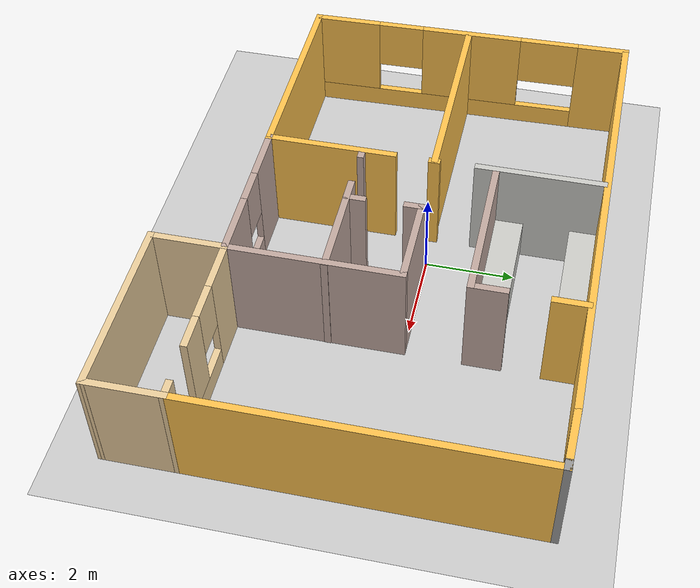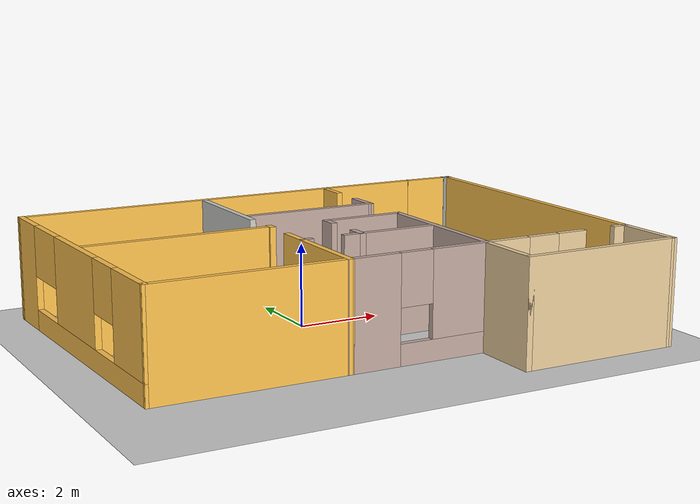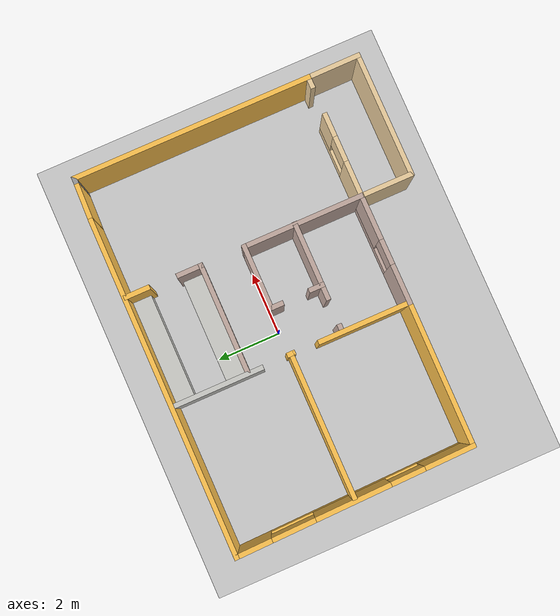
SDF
<sdf version="1.7">
 <world name="default">
  <scene><ambient>0.4 0.4 0.4 1</ambient><background>0.7 0.7 0.7 1</background><shadows>1</shadows></scene>
  <light name="sun" type="directional">
   <pose>0 0 10 0 -0 0</pose>
   <diffuse>0.8 0.8 0.8 1</diffuse>
   <specular>0.2 0.2 0.2 1</specular>
   <attenuation>
    <range>1000</range>
    <constant>0.9</constant>
    <linear>0.01</linear>
    <quadratic>0.001</quadratic>
   </attenuation>
   <direction>-0.5 0.1 -0.9</direction>
   <spot><inner_angle>0</inner_angle><outer_angle>0</outer_angle><falloff>0</falloff></spot>
  </light>
  <model name="ground_plane">
   <static>1</static>
   <link name="link">
    <collision name="collision">
     <geometry><plane><normal>0 0 1</normal><size>100 100</size></plane></geometry>
     <surface>
      <contact><collide_bitmask>65535</collide_bitmask></contact>
      <friction><ode><mu>100</mu><mu2>50</mu2></ode></friction>
     </surface>
    </collision>
    <visual name="visual">
     <cast_shadows>0</cast_shadows>
     <geometry><plane><normal>0 0 1</normal><size>100 100</size></plane></geometry>
     <material>
      <script><uri>file://media/materials/scripts/gazebo.material</uri><name>Gazebo/Grey</name></script>
     </material>
    </visual>
   </link>
  </model>
  <physics type="ode">
   <real_time_update_rate>1000</real_time_update_rate>
   <max_step_size>0.001</max_step_size>
   <real_time_factor>1</real_time_factor>
   <ode>
    <solver>
     <type>quick</type>
     <iters>150</iters>
     <precon_iters>0</precon_iters>
     <sor>1.4</sor>
     <use_dynamic_moi_rescaling>1</use_dynamic_moi_rescaling>
    </solver>
    <constraints>
     <cfm>1e-05</cfm>
     <erp>0.2</erp>
     <contact_max_correcting_vel>2000</contact_max_correcting_vel>
     <contact_surface_layer>0.01</contact_surface_layer>
    </constraints>
   </ode>
  </physics>
  <gravity>0 0 -9.8</gravity>
  <magnetic_field>6e-06 2.3e-05 -4.2e-05</magnetic_field>
  <atmosphere type="adiabatic"/>
  <spherical_coordinates>
   <surface_model>EARTH_WGS84</surface_model>
   <latitude_deg>0</latitude_deg>
   <longitude_deg>0</longitude_deg>
   <elevation>0</elevation>
   <heading_deg>0</heading_deg>
  </spherical_coordinates>
  <model name="a3">
   <pose>0.471916 -0.801169 0 0 -0 0</pose>
   <link name="Stairs_11">
    <visual name="Stairs_11_Visual_0">
     <pose>0.400029 4.18994 0.5 0 0 -1.5708</pose>
     <geometry><box><size>0.603 3.419 1</size></box></geometry>
     <material>
      <script><uri>file://media/materials/scripts/gazebo.material</uri><name>Gazebo/CeilingTiled</name></script>
      <ambient>1 1 1 1</ambient>
     </material>
     <meta><layer>0</layer></meta>
    </visual>
    <collision name="Stairs_11_Collision_0">
     <geometry><box><size>0.603 3.419 1</size></box></geometry>
     <pose>0.400029 4.18994 0.5 0 0 -1.5708</pose>
    </collision>
   </link>
   <link name="Stairs_9">
    <visual name="Stairs_9_Visual_0">
     <pose>0.469784 2.50552 0.5 0 0 -1.5708</pose>
     <geometry><box><size>0.687167 3.42537 1</size></box></geometry>
     <material>
      <script><uri>file://media/materials/scripts/gazebo.material</uri><name>Gazebo/CeilingTiled</name></script>
      <ambient>1 1 1 1</ambient>
     </material>
     <meta><layer>0</layer></meta>
    </visual>
    <collision name="Stairs_9_Collision_0">
     <geometry><box><size>0.687167 3.42537 1</size></box></geometry>
     <pose>0.469784 2.50552 0.5 0 0 -1.5708</pose>
    </collision>
   </link>
   <link name="Wall_101">
    <collision name="Wall_101_Collision">
     <geometry><box><size>2.9783 0.15 2.5</size></box></geometry>
     <pose>0 0 1.25 0 -0 0</pose>
    </collision>
    <visual name="Wall_101_Visual">
     <pose>0 0 1.25 0 -0 0</pose>
     <geometry><box><size>2.9783 0.15 2.5</size></box></geometry>
     <material>
      <script><uri>file://media/materials/scripts/gazebo.material</uri><name>Gazebo/Grey</name></script>
      <ambient>1 0.764706 0.305882 1</ambient>
     </material>
     <meta><layer>0</layer></meta>
    </visual>
    <pose>-1.2918 -1.56 0 0 -0 -1.5708</pose>
   </link>
   <link name="Wall_103">
    <collision name="Wall_103_Collision">
     <geometry><box><size>0.318057 0.15 2.5</size></box></geometry>
     <pose>0 0 1.25 0 -0 0</pose>
    </collision>
    <visual name="Wall_103_Visual">
     <pose>0 0 1.25 0 -0 0</pose>
     <geometry><box><size>0.318057 0.15 2.5</size></box></geometry>
     <material>
      <script><uri>file://media/materials/scripts/gazebo.material</uri><name>Gazebo/Grey</name></script>
      <ambient>0.760784 0.662745 0.627451 1</ambient>
     </material>
     <meta><layer>0</layer></meta>
    </visual>
    <pose>-1.19661 -0.839242 0 0 -0 0</pose>
   </link>
   <link name="Wall_105">
    <collision name="Wall_105_Collision">
     <geometry><box><size>0.462711 0.15 2.5</size></box></geometry>
     <pose>0 0 1.25 0 -0 0</pose>
    </collision>
    <visual name="Wall_105_Visual">
     <pose>0 0 1.25 0 -0 0</pose>
     <geometry><box><size>0.462711 0.15 2.5</size></box></geometry>
     <material>
      <script><uri>file://media/materials/scripts/gazebo.material</uri><name>Gazebo/Grey</name></script>
      <ambient>0.760784 0.662745 0.627451 1</ambient>
     </material>
     <meta><layer>0</layer></meta>
    </visual>
    <pose>0.173202 0.614505 0 0 -0 1.5708</pose>
   </link>
   <link name="Wall_106">
    <collision name="Wall_106_Collision">
     <geometry><box><size>2.10596 0.15 2.5</size></box></geometry>
     <pose>0 0 1.25 0 -0 0</pose>
    </collision>
    <visual name="Wall_106_Visual">
     <pose>0 0 1.25 0 -0 0</pose>
     <geometry><box><size>2.10596 0.15 2.5</size></box></geometry>
     <material>
      <script><uri>file://media/materials/scripts/gazebo.material</uri><name>Gazebo/Grey</name></script>
      <ambient>0.760784 0.662745 0.627451 1</ambient>
     </material>
     <meta><layer>0</layer></meta>
    </visual>
    <pose>1.1512 0.771005 0 0 -0 0</pose>
   </link>
   <link name="Wall_107">
    <collision name="Wall_107_Collision">
     <geometry><box><size>3.88427 0.15 2.5</size></box></geometry>
     <pose>0 0 1.25 0 -0 0</pose>
    </collision>
    <visual name="Wall_107_Visual">
     <pose>0 0 1.25 0 -0 0</pose>
     <geometry><box><size>3.88427 0.15 2.5</size></box></geometry>
     <material>
      <script><uri>file://media/materials/scripts/gazebo.material</uri><name>Gazebo/Grey</name></script>
      <ambient>0.760784 0.662745 0.627451 1</ambient>
     </material>
     <meta><layer>0</layer></meta>
    </visual>
    <pose>2.1292 -1.096 0 0 -0 -1.5708</pose>
   </link>
   <link name="Wall_109">
    <collision name="Wall_109_Collision">
     <geometry><box><size>2.5 0.15 2.5</size></box></geometry>
     <pose>0 0 1.25 0 -0 0</pose>
    </collision>
    <visual name="Wall_109_Visual">
     <pose>0 0 1.25 0 -0 0</pose>
     <geometry><box><size>2.5 0.15 2.5</size></box></geometry>
     <material>
      <script><uri>file://media/materials/scripts/gazebo.material</uri><name>Gazebo/Grey</name></script>
      <ambient>0.760784 0.662745 0.627451 1</ambient>
     </material>
     <meta><layer>0</layer></meta>
    </visual>
    <pose>0.96531 -0.850421 0 0 -0 3.14159</pose>
   </link>
   <link name="Wall_111">
    <collision name="Wall_111_Collision">
     <geometry><box><size>0.5 0.15 2.5</size></box></geometry>
     <pose>0 0 1.25 0 -0 0</pose>
    </collision>
    <visual name="Wall_111_Visual">
     <pose>0 0 1.25 0 -0 0</pose>
     <geometry><box><size>0.5 0.15 2.5</size></box></geometry>
     <material>
      <script><uri>file://media/materials/scripts/gazebo.material</uri><name>Gazebo/Grey</name></script>
      <ambient>0.760784 0.662745 0.627451 1</ambient>
     </material>
     <meta><layer>0</layer></meta>
    </visual>
    <pose>0.19517 -0.678873 0 0 -0 -1.5708</pose>
   </link>
   <link name="Wall_114">
    <collision name="Wall_114_Collision">
     <geometry><box><size>1.75 0.15 2.5</size></box></geometry>
     <pose>0 0 1.25 0 -0 0</pose>
    </collision>
    <visual name="Wall_114_Visual">
     <pose>0 0 1.25 0 -0 0</pose>
     <geometry><box><size>1.75 0.15 2.5</size></box></geometry>
     <material>
      <script><uri>file://media/materials/scripts/gazebo.material</uri><name>Gazebo/Grey</name></script>
      <ambient>0.921569 0.807843 0.615686 1</ambient>
     </material>
     <meta><layer>0</layer></meta>
    </visual>
    <pose>2.1292 -3.763 0 0 -0 -1.5708</pose>
   </link>
   <link name="Wall_115">
    <collision name="Wall_115_Collision">
     <geometry><box><size>4 0.15 2.5</size></box></geometry>
     <pose>0 0 1.25 0 -0 0</pose>
    </collision>
    <visual name="Wall_115_Visual">
     <pose>0 0 1.25 0 -0 0</pose>
     <geometry><box><size>4 0.15 2.5</size></box></geometry>
     <material>
      <script><uri>file://media/materials/scripts/gazebo.material</uri><name>Gazebo/Grey</name></script>
      <ambient>0.921569 0.807843 0.615686 1</ambient>
     </material>
     <meta><layer>0</layer></meta>
    </visual>
    <pose>4.0542 -4.563 0 0 -0 0</pose>
   </link>
   <link name="Wall_116">
    <collision name="Wall_116_Collision">
     <geometry><box><size>1.75502 0.15 2.5</size></box></geometry>
     <pose>0 0 1.25 0 -0 0</pose>
    </collision>
    <visual name="Wall_116_Visual">
     <pose>0 0 1.25 0 -0 0</pose>
     <geometry><box><size>1.75502 0.15 2.5</size></box></geometry>
     <material>
      <script><uri>file://media/materials/scripts/gazebo.material</uri><name>Gazebo/Grey</name></script>
      <ambient>0.921569 0.807843 0.615686 1</ambient>
     </material>
     <meta><layer>0</layer></meta>
    </visual>
    <pose>5.9752 -3.7605 0 0 -0 1.57578</pose>
   </link>
   <link name="Wall_118">
    <collision name="Wall_118_Collision">
     <geometry><box><size>4.66903 0.15 2.5</size></box></geometry>
     <pose>0 0 1.25 0 -0 0</pose>
    </collision>
    <visual name="Wall_118_Visual">
     <pose>0 0 1.25 0 -0 0</pose>
     <geometry><box><size>4.66903 0.15 2.5</size></box></geometry>
     <material>
      <script><uri>file://media/materials/scripts/gazebo.material</uri><name>Gazebo/Grey</name></script>
      <ambient>1 0.764706 0.305882 1</ambient>
     </material>
     <meta><layer>0</layer></meta>
    </visual>
    <pose>-3.5513 -2.966 0 0 -0 -0.003541</pose>
   </link>
   <link name="Wall_119">
    <pose>0.418702 -2.96849 0 0 -0 0.003215</pose>
    <visual name="Wall_119_Visual_0">
     <pose>-1.14237 0 1.25 0 -0 0</pose>
     <geometry><box><size>1.28627 0.15 2.5</size></box></geometry>
     <material>
      <script><uri>file://media/materials/scripts/gazebo.material</uri><name>Gazebo/Grey</name></script>
      <ambient>0.760784 0.662745 0.627451 1</ambient>
     </material>
     <meta><layer>0</layer></meta>
    </visual>
    <collision name="Wall_119_Collision_0">
     <geometry><box><size>1.28627 0.15 2.5</size></box></geometry>
     <pose>-1.14237 0 1.25 0 -0 0</pose>
    </collision>
    <visual name="Wall_119_Visual_1">
     <pose>0.643133 0 0.25 0 -0 0</pose>
     <geometry><box><size>2.28475 0.15 0.5</size></box></geometry>
     <material>
      <script><uri>file://media/materials/scripts/gazebo.material</uri><name>Gazebo/Grey</name></script>
      <ambient>0.760784 0.662745 0.627451 1</ambient>
     </material>
     <meta><layer>0</layer></meta>
    </visual>
    <collision name="Wall_119_Collision_1">
     <geometry><box><size>2.28475 0.15 0.5</size></box></geometry>
     <pose>0.643133 0 0.25 0 -0 0</pose>
    </collision>
    <visual name="Wall_119_Visual_2">
     <pose>1.04313 0 1.5 0 -0 0</pose>
     <geometry><box><size>1.48475 0.15 2</size></box></geometry>
     <material>
      <script><uri>file://media/materials/scripts/gazebo.material</uri><name>Gazebo/Grey</name></script>
      <ambient>0.760784 0.662745 0.627451 1</ambient>
     </material>
     <meta><layer>0</layer></meta>
    </visual>
    <collision name="Wall_119_Collision_2">
     <geometry><box><size>1.48475 0.15 2</size></box></geometry>
     <pose>1.04313 0 1.5 0 -0 0</pose>
    </collision>
    <visual name="Wall_119_Visual_3">
     <pose>-0.099242 0 1.9 0 -0 0</pose>
     <geometry><box><size>0.8 0.15 1.2</size></box></geometry>
     <material>
      <script><uri>file://media/materials/scripts/gazebo.material</uri><name>Gazebo/Grey</name></script>
      <ambient>0.760784 0.662745 0.627451 1</ambient>
     </material>
     <meta><layer>0</layer></meta>
    </visual>
    <collision name="Wall_119_Collision_3">
     <geometry><box><size>0.8 0.15 1.2</size></box></geometry>
     <pose>-0.099242 0 1.9 0 -0 0</pose>
    </collision>
   </link>
   <link name="Wall_120">
    <pose>3.4292 -2.963 0 0 -0 0</pose>
    <visual name="Wall_120_Visual_0">
     <pose>-0.781841 0 1.25 0 -0 0</pose>
     <geometry><box><size>1.18632 0.15 2.5</size></box></geometry>
     <material>
      <script><uri>file://media/materials/scripts/gazebo.material</uri><name>Gazebo/Grey</name></script>
      <ambient>0.921569 0.807843 0.615686 1</ambient>
     </material>
     <meta><layer>0</layer></meta>
    </visual>
    <collision name="Wall_120_Collision_0">
     <geometry><box><size>1.18632 0.15 2.5</size></box></geometry>
     <pose>-0.781841 0 1.25 0 -0 0</pose>
    </collision>
    <visual name="Wall_120_Visual_1">
     <pose>0.593159 0 0.25 0 -0 0</pose>
     <geometry><box><size>1.56368 0.15 0.5</size></box></geometry>
     <material>
      <script><uri>file://media/materials/scripts/gazebo.material</uri><name>Gazebo/Grey</name></script>
      <ambient>0.921569 0.807843 0.615686 1</ambient>
     </material>
     <meta><layer>0</layer></meta>
    </visual>
    <collision name="Wall_120_Collision_1">
     <geometry><box><size>1.56368 0.15 0.5</size></box></geometry>
     <pose>0.593159 0 0.25 0 -0 0</pose>
    </collision>
    <visual name="Wall_120_Visual_2">
     <pose>0.993159 0 1.5 0 -0 0</pose>
     <geometry><box><size>0.763682 0.15 2</size></box></geometry>
     <material>
      <script><uri>file://media/materials/scripts/gazebo.material</uri><name>Gazebo/Grey</name></script>
      <ambient>0.921569 0.807843 0.615686 1</ambient>
     </material>
     <meta><layer>0</layer></meta>
    </visual>
    <collision name="Wall_120_Collision_2">
     <geometry><box><size>0.763682 0.15 2</size></box></geometry>
     <pose>0.993159 0 1.5 0 -0 0</pose>
    </collision>
    <visual name="Wall_120_Visual_3">
     <pose>0.211318 0 1.9 0 -0 0</pose>
     <geometry><box><size>0.8 0.15 1.2</size></box></geometry>
     <material>
      <script><uri>file://media/materials/scripts/gazebo.material</uri><name>Gazebo/Grey</name></script>
      <ambient>0.921569 0.807843 0.615686 1</ambient>
     </material>
     <meta><layer>0</layer></meta>
    </visual>
    <collision name="Wall_120_Collision_3">
     <geometry><box><size>0.8 0.15 1.2</size></box></geometry>
     <pose>0.211318 0 1.9 0 -0 0</pose>
    </collision>
   </link>
   <link name="Wall_122">
    <collision name="Wall_122_Collision">
     <geometry><box><size>0.435228 0.15 2.5</size></box></geometry>
     <pose>0 0 1.25 0 -0 0</pose>
    </collision>
    <visual name="Wall_122_Visual">
     <pose>0 0 1.25 0 -0 0</pose>
     <geometry><box><size>0.435228 0.15 2.5</size></box></geometry>
     <material>
      <script><uri>file://media/materials/scripts/gazebo.material</uri><name>Gazebo/Grey</name></script>
      <ambient>0.921569 0.807843 0.615686 1</ambient>
     </material>
     <meta><layer>0</layer></meta>
    </visual>
    <pose>5.82874 -2.95892 0 0 -0 -3.13509</pose>
   </link>
   <link name="Wall_124">
    <collision name="Wall_124_Collision">
     <geometry><box><size>10.75 0.15 2.5</size></box></geometry>
     <pose>0 0 1.25 0 -0 0</pose>
    </collision>
    <visual name="Wall_124_Visual">
     <pose>0 0 1.25 0 -0 0</pose>
     <geometry><box><size>10.75 0.15 2.5</size></box></geometry>
     <material>
      <script><uri>file://media/materials/scripts/gazebo.material</uri><name>Gazebo/Grey</name></script>
      <ambient>1 0.764706 0.305882 1</ambient>
     </material>
     <meta><layer>0</layer></meta>
    </visual>
    <pose>-0.677924 4.56157 0 0 -0 0</pose>
   </link>
   <link name="Wall_126">
    <collision name="Wall_126_Collision">
     <geometry><box><size>0.25 0.15 2.5</size></box></geometry>
     <pose>0 0 1.25 0 -0 0</pose>
    </collision>
    <visual name="Wall_126_Visual">
     <pose>0 0 1.25 0 -0 0</pose>
     <geometry><box><size>0.25 0.15 2.5</size></box></geometry>
     <material>
      <script><uri>file://media/materials/scripts/gazebo.material</uri><name>Gazebo/Grey</name></script>
      <ambient>1 1 1 1</ambient>
     </material>
     <meta><layer>0</layer></meta>
    </visual>
    <pose>5.9212 4.52301 0 0 -0 3.14159</pose>
   </link>
   <link name="Wall_79">
    <pose>-5.89436 0.801788 0 0 -0 -1.54858</pose>
    <visual name="Wall_79_Visual_0">
     <pose>-3.23115 0 1.25 0 -0 0</pose>
     <geometry><box><size>1.20942 0.15 2.5</size></box></geometry>
     <material>
      <script><uri>file://media/materials/scripts/gazebo.material</uri><name>Gazebo/Grey</name></script>
      <ambient>1 0.764706 0.305882 1</ambient>
     </material>
     <meta><layer>0</layer></meta>
    </visual>
    <collision name="Wall_79_Collision_0">
     <geometry><box><size>1.20942 0.15 2.5</size></box></geometry>
     <pose>-3.23115 0 1.25 0 -0 0</pose>
    </collision>
    <visual name="Wall_79_Visual_1">
     <pose>0.604709 0 0.25 0 -0 0</pose>
     <geometry><box><size>6.4623 0.15 0.5</size></box></geometry>
     <material>
      <script><uri>file://media/materials/scripts/gazebo.material</uri><name>Gazebo/Grey</name></script>
      <ambient>1 0.764706 0.305882 1</ambient>
     </material>
     <meta><layer>0</layer></meta>
    </visual>
    <collision name="Wall_79_Collision_1">
     <geometry><box><size>6.4623 0.15 0.5</size></box></geometry>
     <pose>0.604709 0 0.25 0 -0 0</pose>
    </collision>
    <visual name="Wall_79_Visual_2">
     <pose>-0.047982 0 1.5 0 -0 0</pose>
     <geometry><box><size>2.39431 0.15 2</size></box></geometry>
     <material>
      <script><uri>file://media/materials/scripts/gazebo.material</uri><name>Gazebo/Grey</name></script>
      <ambient>1 0.764706 0.305882 1</ambient>
     </material>
     <meta><layer>0</layer></meta>
    </visual>
    <collision name="Wall_79_Collision_2">
     <geometry><box><size>2.39431 0.15 2</size></box></geometry>
     <pose>-0.047982 0 1.5 0 -0 0</pose>
    </collision>
    <visual name="Wall_79_Visual_3">
     <pose>3.03225 0 1.5 0 -0 0</pose>
     <geometry><box><size>1.60721 0.15 2</size></box></geometry>
     <material>
      <script><uri>file://media/materials/scripts/gazebo.material</uri><name>Gazebo/Grey</name></script>
      <ambient>1 0.764706 0.305882 1</ambient>
     </material>
     <meta><layer>0</layer></meta>
    </visual>
    <collision name="Wall_79_Collision_3">
     <geometry><box><size>1.60721 0.15 2</size></box></geometry>
     <pose>3.03225 0 1.5 0 -0 0</pose>
    </collision>
    <visual name="Wall_79_Visual_4">
     <pose>-1.93579 0 1.9 0 -0 0</pose>
     <geometry><box><size>1.38131 0.15 1.2</size></box></geometry>
     <material>
      <script><uri>file://media/materials/scripts/gazebo.material</uri><name>Gazebo/Grey</name></script>
      <ambient>1 0.764706 0.305882 1</ambient>
     </material>
     <meta><layer>0</layer></meta>
    </visual>
    <collision name="Wall_79_Collision_4">
     <geometry><box><size>1.38131 0.15 1.2</size></box></geometry>
     <pose>-1.93579 0 1.9 0 -0 0</pose>
    </collision>
    <visual name="Wall_79_Visual_5">
     <pose>1.68891 0 1.9 0 -0 0</pose>
     <geometry><box><size>1.07947 0.15 1.2</size></box></geometry>
     <material>
      <script><uri>file://media/materials/scripts/gazebo.material</uri><name>Gazebo/Grey</name></script>
      <ambient>1 0.764706 0.305882 1</ambient>
     </material>
     <meta><layer>0</layer></meta>
    </visual>
    <collision name="Wall_79_Collision_5">
     <geometry><box><size>1.07947 0.15 1.2</size></box></geometry>
     <pose>1.68891 0 1.9 0 -0 0</pose>
    </collision>
   </link>
   <link name="Wall_81">
    <collision name="Wall_81_Collision">
     <geometry><box><size>7.63125 0.15 2.5</size></box></geometry>
     <pose>0 0 1.25 0 -0 0</pose>
    </collision>
    <visual name="Wall_81_Visual">
     <pose>0 0 1.25 0 -0 0</pose>
     <geometry><box><size>7.63125 0.15 2.5</size></box></geometry>
     <material>
      <script><uri>file://media/materials/scripts/gazebo.material</uri><name>Gazebo/Grey</name></script>
      <ambient>1 0.764706 0.305882 1</ambient>
     </material>
     <meta><layer>0</layer></meta>
    </visual>
    <pose>5.9712 0.782505 0 0 -0 1.5708</pose>
   </link>
   <link name="Wall_85">
    <collision name="Wall_85_Collision">
     <geometry><box><size>4.62162 0.15 2.5</size></box></geometry>
     <pose>0 0 1.25 0 -0 0</pose>
    </collision>
    <visual name="Wall_85_Visual">
     <pose>0 0 1.25 0 -0 0</pose>
     <geometry><box><size>4.62162 0.15 2.5</size></box></geometry>
     <material>
      <script><uri>file://media/materials/scripts/gazebo.material</uri><name>Gazebo/Grey</name></script>
      <ambient>1 0.764706 0.305882 1</ambient>
     </material>
     <meta><layer>0</layer></meta>
    </visual>
    <pose>-3.5403 0.780005 0 0 -0 0</pose>
   </link>
   <link name="Wall_90">
    <collision name="Wall_90_Collision">
     <geometry><box><size>0.261 0.15 2.5</size></box></geometry>
     <pose>0 0 1.25 0 -0 0</pose>
    </collision>
    <visual name="Wall_90_Visual">
     <pose>0 0 1.25 0 -0 0</pose>
     <geometry><box><size>0.261 0.15 2.5</size></box></geometry>
     <material>
      <script><uri>file://media/materials/scripts/gazebo.material</uri><name>Gazebo/Grey</name></script>
      <ambient>1 0.764706 0.305882 1</ambient>
     </material>
     <meta><layer>0</layer></meta>
    </visual>
    <pose>-1.2748 0.778505 0 0 -0 -1.5708</pose>
   </link>
   <link name="Wall_92">
    <collision name="Wall_92_Collision">
     <geometry><box><size>0.820738 0.15 2.5</size></box></geometry>
     <pose>0 0 1.25 0 -0 0</pose>
    </collision>
    <visual name="Wall_92_Visual">
     <pose>0 0 1.25 0 -0 0</pose>
     <geometry><box><size>0.820738 0.15 2.5</size></box></geometry>
     <material>
      <script><uri>file://media/materials/scripts/gazebo.material</uri><name>Gazebo/Grey</name></script>
      <ambient>1 0.764706 0.305882 1</ambient>
     </material>
     <meta><layer>0</layer></meta>
    </visual>
    <pose>2.15736 4.16791 0 0 -0 -1.5708</pose>
   </link>
   <link name="Wall_95">
    <collision name="Wall_95_Collision">
     <geometry><box><size>2.89024 0.15 2.5</size></box></geometry>
     <pose>0 0 1.25 0 -0 0</pose>
    </collision>
    <visual name="Wall_95_Visual">
     <pose>0 0 1.25 0 -0 0</pose>
     <geometry><box><size>2.89024 0.15 2.5</size></box></geometry>
     <material>
      <script><uri>file://media/materials/scripts/gazebo.material</uri><name>Gazebo/CeilingTiled</name></script>
      <ambient>1 1 1 1</ambient>
     </material>
     <meta><layer>0</layer></meta>
    </visual>
    <pose>-1.30258 3.11144 0 0 -0 -1.57108</pose>
   </link>
   <link name="Wall_97">
    <collision name="Wall_97_Collision">
     <geometry><box><size>3.55653 0.15 2.5</size></box></geometry>
     <pose>0 0 1.25 0 -0 0</pose>
    </collision>
    <visual name="Wall_97_Visual">
     <pose>0 0 1.25 0 -0 0</pose>
     <geometry><box><size>3.55653 0.15 2.5</size></box></geometry>
     <material>
      <script><uri>file://media/materials/scripts/gazebo.material</uri><name>Gazebo/Grey</name></script>
      <ambient>0.760784 0.662745 0.627451 1</ambient>
     </material>
     <meta><layer>0</layer></meta>
    </visual>
    <pose>0.425702 2.14701 0 0 -0 0</pose>
   </link>
   <link name="Wall_99">
    <collision name="Wall_99_Collision">
     <geometry><box><size>0.851643 0.15 2.5</size></box></geometry>
     <pose>0 0 1.25 0 -0 0</pose>
    </collision>
    <visual name="Wall_99_Visual">
     <pose>0 0 1.25 0 -0 0</pose>
     <geometry><box><size>0.851643 0.15 2.5</size></box></geometry>
     <material>
      <script><uri>file://media/materials/scripts/gazebo.material</uri><name>Gazebo/Grey</name></script>
      <ambient>0.760784 0.662745 0.627451 1</ambient>
     </material>
     <meta><layer>0</layer></meta>
    </visual>
    <pose>2.12906 2.49783 0 0 -0 1.5712</pose>
   </link>
   <static>1</static>
  </model>
  <model name="a3_edit_0">
   <pose>3.15069 1.91623 0 0 -0 0</pose>
   <link name="Wall_6">
    <collision name="Wall_6_Collision">
     <geometry><box><size>1.14993 0.15 2.5</size></box></geometry>
     <pose>0 0 1.25 0 -0 0</pose>
    </collision>
    <visual name="Wall_6_Visual">
     <pose>0 0 1.25 0 -0 0</pose>
     <geometry><box><size>1.14993 0.15 2.5</size></box></geometry>
     <material>
      <script><uri>file://media/materials/scripts/gazebo.material</uri><name>Gazebo/Grey</name></script>
      <ambient>1 0.764706 0.305882 1</ambient>
     </material>
     <meta><layer>0</layer></meta>
    </visual>
    <pose>2.57375 1.82411 0 0 -0 -0.029842</pose>
   </link>
   <static>1</static>
  </model>
 </world>
</sdf>
